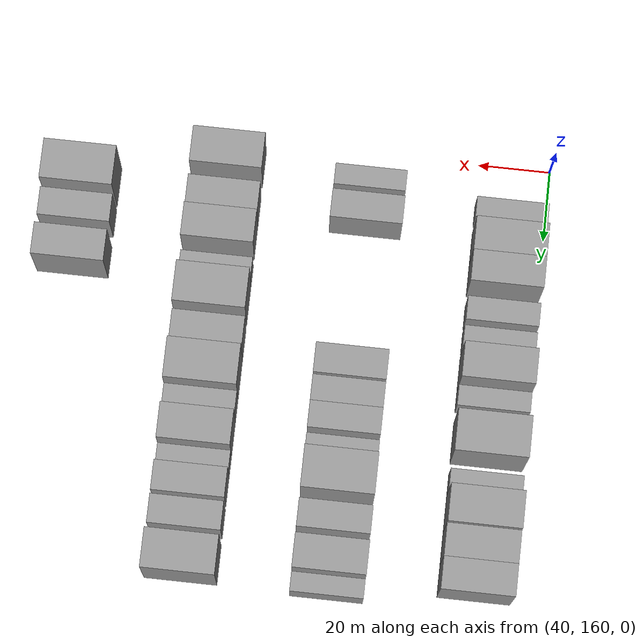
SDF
<sdf version="1.6">
 <world name="default">
  <model name="building_82">
   <static>1</static>
   <pose>50.0000 175.1410 0 0.000000 0.000000 0.000000</pose>
   <link name="link">
    <pose>0 0 6.00 0 0 0</pose>
    <collision name="collision"><geometry><box><size>20.0000 5.9239 12.0000</size></box></geometry></collision>
    <visual name="visual">
     <cast_shadows>0</cast_shadows>
     <geometry><box><size>20.0000 5.9239 12.0000</size></box></geometry>
     <material>
      <script>
       <uri>model://grey_wall/materials/scripts</uri>
       <uri>model://grey_wall/materials/textures</uri>
       <name>vrc/grey_wall</name>
      </script>
     </material>
    </visual>
   </link>
  </model>
  <model name="building_83">
   <static>1</static>
   <pose>50.0000 184.8120 0 0.000000 0.000000 0.000000</pose>
   <link name="link">
    <pose>0 0 10.50 0 0 0</pose>
    <collision name="collision"><geometry><box><size>20.0000 9.4180 21.0000</size></box></geometry></collision>
    <visual name="visual">
     <cast_shadows>0</cast_shadows>
     <geometry><box><size>20.0000 9.4180 21.0000</size></box></geometry>
     <material>
      <script>
       <uri>model://grey_wall/materials/scripts</uri>
       <uri>model://grey_wall/materials/textures</uri>
       <name>vrc/grey_wall</name>
      </script>
     </material>
    </visual>
   </link>
  </model>
  <model name="building_84">
   <static>1</static>
   <pose>50.0000 193.8947 0 0.000000 0.000000 0.000000</pose>
   <link name="link">
    <pose>0 0 10.50 0 0 0</pose>
    <collision name="collision"><geometry><box><size>20.0000 8.7476 21.0000</size></box></geometry></collision>
    <visual name="visual">
     <cast_shadows>0</cast_shadows>
     <geometry><box><size>20.0000 8.7476 21.0000</size></box></geometry>
     <material>
      <script>
       <uri>model://grey_wall/materials/scripts</uri>
       <uri>model://grey_wall/materials/textures</uri>
       <name>vrc/grey_wall</name>
      </script>
     </material>
    </visual>
   </link>
  </model>
  <model name="building_85">
   <static>1</static>
   <pose>50.0000 204.5671 0 0.000000 0.000000 0.000000</pose>
   <link name="link">
    <pose>0 0 7.50 0 0 0</pose>
    <collision name="collision"><geometry><box><size>20.0000 6.5972 15.0000</size></box></geometry></collision>
    <visual name="visual">
     <cast_shadows>0</cast_shadows>
     <geometry><box><size>20.0000 6.5972 15.0000</size></box></geometry>
     <material>
      <script>
       <uri>model://grey_wall/materials/scripts</uri>
       <uri>model://grey_wall/materials/textures</uri>
       <name>vrc/grey_wall</name>
      </script>
     </material>
    </visual>
   </link>
  </model>
  <model name="building_86">
   <static>1</static>
   <pose>50.0000 211.8494 0 0.000000 0.000000 0.000000</pose>
   <link name="link">
    <pose>0 0 6.00 0 0 0</pose>
    <collision name="collision"><geometry><box><size>20.0000 5.9674 12.0000</size></box></geometry></collision>
    <visual name="visual">
     <cast_shadows>0</cast_shadows>
     <geometry><box><size>20.0000 5.9674 12.0000</size></box></geometry>
     <material>
      <script>
       <uri>model://grey_wall/materials/scripts</uri>
       <uri>model://grey_wall/materials/textures</uri>
       <name>vrc/grey_wall</name>
      </script>
     </material>
    </visual>
   </link>
  </model>
  <model name="building_87">
   <static>1</static>
   <pose>50.0000 220.7346 0 0.000000 0.000000 0.000000</pose>
   <link name="link">
    <pose>0 0 12.00 0 0 0</pose>
    <collision name="collision"><geometry><box><size>20.0000 9.8029 24.0000</size></box></geometry></collision>
    <visual name="visual">
     <cast_shadows>0</cast_shadows>
     <geometry><box><size>20.0000 9.8029 24.0000</size></box></geometry>
     <material>
      <script>
       <uri>model://grey_wall/materials/scripts</uri>
       <uri>model://grey_wall/materials/textures</uri>
       <name>vrc/grey_wall</name>
      </script>
     </material>
    </visual>
   </link>
  </model>
  <model name="building_88">
   <static>1</static>
   <pose>50.0000 228.4900 0 0.000000 0.000000 0.000000</pose>
   <link name="link">
    <pose>0 0 6.00 0 0 0</pose>
    <collision name="collision"><geometry><box><size>20.0000 5.7079 12.0000</size></box></geometry></collision>
    <visual name="visual">
     <cast_shadows>0</cast_shadows>
     <geometry><box><size>20.0000 5.7079 12.0000</size></box></geometry>
     <material>
      <script>
       <uri>model://grey_wall/materials/scripts</uri>
       <uri>model://grey_wall/materials/textures</uri>
       <name>vrc/grey_wall</name>
      </script>
     </material>
    </visual>
   </link>
  </model>
  <model name="building_89">
   <static>1</static>
   <pose>50.0000 240.0801 0 0.000000 0.000000 0.000000</pose>
   <link name="link">
    <pose>0 0 12.00 0 0 0</pose>
    <collision name="collision"><geometry><box><size>20.0000 11.4722 24.0000</size></box></geometry></collision>
    <visual name="visual">
     <cast_shadows>0</cast_shadows>
     <geometry><box><size>20.0000 11.4722 24.0000</size></box></geometry>
     <material>
      <script>
       <uri>model://grey_wall/materials/scripts</uri>
       <uri>model://grey_wall/materials/textures</uri>
       <name>vrc/grey_wall</name>
      </script>
     </material>
    </visual>
   </link>
  </model>
  <model name="building_90">
   <static>1</static>
   <pose>50.0000 251.7598 0 0.000000 0.000000 0.000000</pose>
   <link name="link">
    <pose>0 0 6.00 0 0 0</pose>
    <collision name="collision"><geometry><box><size>20.0000 5.8871 12.0000</size></box></geometry></collision>
    <visual name="visual">
     <cast_shadows>0</cast_shadows>
     <geometry><box><size>20.0000 5.8871 12.0000</size></box></geometry>
     <material>
      <script>
       <uri>model://grey_wall/materials/scripts</uri>
       <uri>model://grey_wall/materials/textures</uri>
       <name>vrc/grey_wall</name>
      </script>
     </material>
    </visual>
   </link>
  </model>
  <model name="building_91">
   <static>1</static>
   <pose>50.0000 259.8462 0 0.000000 0.000000 0.000000</pose>
   <link name="link">
    <pose>0 0 12.00 0 0 0</pose>
    <collision name="collision"><geometry><box><size>20.0000 10.2856 24.0000</size></box></geometry></collision>
    <visual name="visual">
     <cast_shadows>0</cast_shadows>
     <geometry><box><size>20.0000 10.2856 24.0000</size></box></geometry>
     <material>
      <script>
       <uri>model://grey_wall/materials/scripts</uri>
       <uri>model://grey_wall/materials/textures</uri>
       <name>vrc/grey_wall</name>
      </script>
     </material>
    </visual>
   </link>
  </model>
  <model name="building_92">
   <static>1</static>
   <pose>50.0000 269.4874 0 0.000000 0.000000 0.000000</pose>
   <link name="link">
    <pose>0 0 10.50 0 0 0</pose>
    <collision name="collision"><geometry><box><size>20.0000 8.9970 21.0000</size></box></geometry></collision>
    <visual name="visual">
     <cast_shadows>0</cast_shadows>
     <geometry><box><size>20.0000 8.9970 21.0000</size></box></geometry>
     <material>
      <script>
       <uri>model://grey_wall/materials/scripts</uri>
       <uri>model://grey_wall/materials/textures</uri>
       <name>vrc/grey_wall</name>
      </script>
     </material>
    </visual>
   </link>
  </model>
  <model name="building_93">
   <static>1</static>
   <pose>50.0000 278.4391 0 0.000000 0.000000 0.000000</pose>
   <link name="link">
    <pose>0 0 10.50 0 0 0</pose>
    <collision name="collision"><geometry><box><size>20.0000 8.9065 21.0000</size></box></geometry></collision>
    <visual name="visual">
     <cast_shadows>0</cast_shadows>
     <geometry><box><size>20.0000 8.9065 21.0000</size></box></geometry>
     <material>
      <script>
       <uri>model://grey_wall/materials/scripts</uri>
       <uri>model://grey_wall/materials/textures</uri>
       <name>vrc/grey_wall</name>
      </script>
     </material>
    </visual>
   </link>
  </model>
  <model name="building_216">
   <static>1</static>
   <pose>90.0000 169.8955 0 0.000000 0.000000 0.000000</pose>
   <link name="link">
    <pose>0 0 6.00 0 0 0</pose>
    <collision name="collision"><geometry><box><size>20.0000 5.9540 12.0000</size></box></geometry></collision>
    <visual name="visual">
     <cast_shadows>0</cast_shadows>
     <geometry><box><size>20.0000 5.9540 12.0000</size></box></geometry>
     <material>
      <script>
       <uri>model://grey_wall/materials/scripts</uri>
       <uri>model://grey_wall/materials/textures</uri>
       <name>vrc/grey_wall</name>
      </script>
     </material>
    </visual>
   </link>
  </model>
  <model name="building_217">
   <static>1</static>
   <pose>90.0000 179.8749 0 0.000000 0.000000 0.000000</pose>
   <link name="link">
    <pose>0 0 9.00 0 0 0</pose>
    <collision name="collision"><geometry><box><size>20.0000 8.0049 18.0000</size></box></geometry></collision>
    <visual name="visual">
     <cast_shadows>0</cast_shadows>
     <geometry><box><size>20.0000 8.0049 18.0000</size></box></geometry>
     <material>
      <script>
       <uri>model://grey_wall/materials/scripts</uri>
       <uri>model://grey_wall/materials/textures</uri>
       <name>vrc/grey_wall</name>
      </script>
     </material>
    </visual>
   </link>
  </model>
  <model name="building_218">
   <static>1</static>
   <pose>90.0000 223.3924 0 0.000000 0.000000 0.000000</pose>
   <link name="link">
    <pose>0 0 9.00 0 0 0</pose>
    <collision name="collision"><geometry><box><size>20.0000 8.3434 18.0000</size></box></geometry></collision>
    <visual name="visual">
     <cast_shadows>0</cast_shadows>
     <geometry><box><size>20.0000 8.3434 18.0000</size></box></geometry>
     <material>
      <script>
       <uri>model://grey_wall/materials/scripts</uri>
       <uri>model://grey_wall/materials/textures</uri>
       <name>vrc/grey_wall</name>
      </script>
     </material>
    </visual>
   </link>
  </model>
  <model name="building_219">
   <static>1</static>
   <pose>90.0000 231.1657 0 0.000000 0.000000 0.000000</pose>
   <link name="link">
    <pose>0 0 7.50 0 0 0</pose>
    <collision name="collision"><geometry><box><size>20.0000 7.2032 15.0000</size></box></geometry></collision>
    <visual name="visual">
     <cast_shadows>0</cast_shadows>
     <geometry><box><size>20.0000 7.2032 15.0000</size></box></geometry>
     <material>
      <script>
       <uri>model://grey_wall/materials/scripts</uri>
       <uri>model://grey_wall/materials/textures</uri>
       <name>vrc/grey_wall</name>
      </script>
     </material>
    </visual>
   </link>
  </model>
  <model name="building_220">
   <static>1</static>
   <pose>90.0000 238.5093 0 0.000000 0.000000 0.000000</pose>
   <link name="link">
    <pose>0 0 7.50 0 0 0</pose>
    <collision name="collision"><geometry><box><size>20.0000 7.4840 15.0000</size></box></geometry></collision>
    <visual name="visual">
     <cast_shadows>0</cast_shadows>
     <geometry><box><size>20.0000 7.4840 15.0000</size></box></geometry>
     <material>
      <script>
       <uri>model://grey_wall/materials/scripts</uri>
       <uri>model://grey_wall/materials/textures</uri>
       <name>vrc/grey_wall</name>
      </script>
     </material>
    </visual>
   </link>
  </model>
  <model name="building_221">
   <static>1</static>
   <pose>90.0000 245.8730 0 0.000000 0.000000 0.000000</pose>
   <link name="link">
    <pose>0 0 6.00 0 0 0</pose>
    <collision name="collision"><geometry><box><size>20.0000 5.2434 12.0000</size></box></geometry></collision>
    <visual name="visual">
     <cast_shadows>0</cast_shadows>
     <geometry><box><size>20.0000 5.2434 12.0000</size></box></geometry>
     <material>
      <script>
       <uri>model://grey_wall/materials/scripts</uri>
       <uri>model://grey_wall/materials/textures</uri>
       <name>vrc/grey_wall</name>
      </script>
     </material>
    </visual>
   </link>
  </model>
  <model name="building_222">
   <static>1</static>
   <pose>90.0000 254.3017 0 0.000000 0.000000 0.000000</pose>
   <link name="link">
    <pose>0 0 12.00 0 0 0</pose>
    <collision name="collision"><geometry><box><size>20.0000 11.6140 24.0000</size></box></geometry></collision>
    <visual name="visual">
     <cast_shadows>0</cast_shadows>
     <geometry><box><size>20.0000 11.6140 24.0000</size></box></geometry>
     <material>
      <script>
       <uri>model://grey_wall/materials/scripts</uri>
       <uri>model://grey_wall/materials/textures</uri>
       <name>vrc/grey_wall</name>
      </script>
     </material>
    </visual>
   </link>
  </model>
  <model name="building_223">
   <static>1</static>
   <pose>90.0000 266.0186 0 0.000000 0.000000 0.000000</pose>
   <link name="link">
    <pose>0 0 9.00 0 0 0</pose>
    <collision name="collision"><geometry><box><size>20.0000 7.8198 18.0000</size></box></geometry></collision>
    <visual name="visual">
     <cast_shadows>0</cast_shadows>
     <geometry><box><size>20.0000 7.8198 18.0000</size></box></geometry>
     <material>
      <script>
       <uri>model://grey_wall/materials/scripts</uri>
       <uri>model://grey_wall/materials/textures</uri>
       <name>vrc/grey_wall</name>
      </script>
     </material>
    </visual>
   </link>
  </model>
  <model name="building_224">
   <static>1</static>
   <pose>90.0000 276.6530 0 0.000000 0.000000 0.000000</pose>
   <link name="link">
    <pose>0 0 10.50 0 0 0</pose>
    <collision name="collision"><geometry><box><size>20.0000 9.4490 21.0000</size></box></geometry></collision>
    <visual name="visual">
     <cast_shadows>0</cast_shadows>
     <geometry><box><size>20.0000 9.4490 21.0000</size></box></geometry>
     <material>
      <script>
       <uri>model://grey_wall/materials/scripts</uri>
       <uri>model://grey_wall/materials/textures</uri>
       <name>vrc/grey_wall</name>
      </script>
     </material>
    </visual>
   </link>
  </model>
  <model name="building_225">
   <static>1</static>
   <pose>90.0000 284.0749 0 0.000000 0.000000 0.000000</pose>
   <link name="link">
    <pose>0 0 6.00 0 0 0</pose>
    <collision name="collision"><geometry><box><size>20.0000 5.3949 12.0000</size></box></geometry></collision>
    <visual name="visual">
     <cast_shadows>0</cast_shadows>
     <geometry><box><size>20.0000 5.3949 12.0000</size></box></geometry>
     <material>
      <script>
       <uri>model://grey_wall/materials/scripts</uri>
       <uri>model://grey_wall/materials/textures</uri>
       <name>vrc/grey_wall</name>
      </script>
     </material>
    </visual>
   </link>
  </model>
  <model name="building_345">
   <static>1</static>
   <pose>130.0000 168.0400 0 0.000000 0.000000 0.000000</pose>
   <link name="link">
    <pose>0 0 10.50 0 0 0</pose>
    <collision name="collision"><geometry><box><size>20.0000 10.0718 21.0000</size></box></geometry></collision>
    <visual name="visual">
     <cast_shadows>0</cast_shadows>
     <geometry><box><size>20.0000 10.0718 21.0000</size></box></geometry>
     <material>
      <script>
       <uri>model://grey_wall/materials/scripts</uri>
       <uri>model://grey_wall/materials/textures</uri>
       <name>vrc/grey_wall</name>
      </script>
     </material>
    </visual>
   </link>
  </model>
  <model name="building_346">
   <static>1</static>
   <pose>130.0000 180.4424 0 0.000000 0.000000 0.000000</pose>
   <link name="link">
    <pose>0 0 9.00 0 0 0</pose>
    <collision name="collision"><geometry><box><size>20.0000 8.7331 18.0000</size></box></geometry></collision>
    <visual name="visual">
     <cast_shadows>0</cast_shadows>
     <geometry><box><size>20.0000 8.7331 18.0000</size></box></geometry>
     <material>
      <script>
       <uri>model://grey_wall/materials/scripts</uri>
       <uri>model://grey_wall/materials/textures</uri>
       <name>vrc/grey_wall</name>
      </script>
     </material>
    </visual>
   </link>
  </model>
  <model name="building_347">
   <static>1</static>
   <pose>130.0000 189.4909 0 0.000000 0.000000 0.000000</pose>
   <link name="link">
    <pose>0 0 10.50 0 0 0</pose>
    <collision name="collision"><geometry><box><size>20.0000 9.3639 21.0000</size></box></geometry></collision>
    <visual name="visual">
     <cast_shadows>0</cast_shadows>
     <geometry><box><size>20.0000 9.3639 21.0000</size></box></geometry>
     <material>
      <script>
       <uri>model://grey_wall/materials/scripts</uri>
       <uri>model://grey_wall/materials/textures</uri>
       <name>vrc/grey_wall</name>
      </script>
     </material>
    </visual>
   </link>
  </model>
  <model name="building_348">
   <static>1</static>
   <pose>130.0000 199.0781 0 0.000000 0.000000 0.000000</pose>
   <link name="link">
    <pose>0 0 6.00 0 0 0</pose>
    <collision name="collision"><geometry><box><size>20.0000 5.8104 12.0000</size></box></geometry></collision>
    <visual name="visual">
     <cast_shadows>0</cast_shadows>
     <geometry><box><size>20.0000 5.8104 12.0000</size></box></geometry>
     <material>
      <script>
       <uri>model://grey_wall/materials/scripts</uri>
       <uri>model://grey_wall/materials/textures</uri>
       <name>vrc/grey_wall</name>
      </script>
     </material>
    </visual>
   </link>
  </model>
  <model name="building_349">
   <static>1</static>
   <pose>130.0000 207.6101 0 0.000000 0.000000 0.000000</pose>
   <link name="link">
    <pose>0 0 12.00 0 0 0</pose>
    <collision name="collision"><geometry><box><size>20.0000 11.2536 24.0000</size></box></geometry></collision>
    <visual name="visual">
     <cast_shadows>0</cast_shadows>
     <geometry><box><size>20.0000 11.2536 24.0000</size></box></geometry>
     <material>
      <script>
       <uri>model://grey_wall/materials/scripts</uri>
       <uri>model://grey_wall/materials/textures</uri>
       <name>vrc/grey_wall</name>
      </script>
     </material>
    </visual>
   </link>
  </model>
  <model name="building_350">
   <static>1</static>
   <pose>130.0000 218.7089 0 0.000000 0.000000 0.000000</pose>
   <link name="link">
    <pose>0 0 9.00 0 0 0</pose>
    <collision name="collision"><geometry><box><size>20.0000 8.9440 18.0000</size></box></geometry></collision>
    <visual name="visual">
     <cast_shadows>0</cast_shadows>
     <geometry><box><size>20.0000 8.9440 18.0000</size></box></geometry>
     <material>
      <script>
       <uri>model://grey_wall/materials/scripts</uri>
       <uri>model://grey_wall/materials/textures</uri>
       <name>vrc/grey_wall</name>
      </script>
     </material>
    </visual>
   </link>
  </model>
  <model name="building_351">
   <static>1</static>
   <pose>130.0000 228.7955 0 0.000000 0.000000 0.000000</pose>
   <link name="link">
    <pose>0 0 12.00 0 0 0</pose>
    <collision name="collision"><geometry><box><size>20.0000 11.2291 24.0000</size></box></geometry></collision>
    <visual name="visual">
     <cast_shadows>0</cast_shadows>
     <geometry><box><size>20.0000 11.2291 24.0000</size></box></geometry>
     <material>
      <script>
       <uri>model://grey_wall/materials/scripts</uri>
       <uri>model://grey_wall/materials/textures</uri>
       <name>vrc/grey_wall</name>
      </script>
     </material>
    </visual>
   </link>
  </model>
  <model name="building_352">
   <static>1</static>
   <pose>130.0000 237.5260 0 0.000000 0.000000 0.000000</pose>
   <link name="link">
    <pose>0 0 7.50 0 0 0</pose>
    <collision name="collision"><geometry><box><size>20.0000 6.2319 15.0000</size></box></geometry></collision>
    <visual name="visual">
     <cast_shadows>0</cast_shadows>
     <geometry><box><size>20.0000 6.2319 15.0000</size></box></geometry>
     <material>
      <script>
       <uri>model://grey_wall/materials/scripts</uri>
       <uri>model://grey_wall/materials/textures</uri>
       <name>vrc/grey_wall</name>
      </script>
     </material>
    </visual>
   </link>
  </model>
  <model name="building_353">
   <static>1</static>
   <pose>130.0000 245.5406 0 0.000000 0.000000 0.000000</pose>
   <link name="link">
    <pose>0 0 10.50 0 0 0</pose>
    <collision name="collision"><geometry><box><size>20.0000 9.7974 21.0000</size></box></geometry></collision>
    <visual name="visual">
     <cast_shadows>0</cast_shadows>
     <geometry><box><size>20.0000 9.7974 21.0000</size></box></geometry>
     <material>
      <script>
       <uri>model://grey_wall/materials/scripts</uri>
       <uri>model://grey_wall/materials/textures</uri>
       <name>vrc/grey_wall</name>
      </script>
     </material>
    </visual>
   </link>
  </model>
  <model name="building_354">
   <static>1</static>
   <pose>130.0000 253.2370 0 0.000000 0.000000 0.000000</pose>
   <link name="link">
    <pose>0 0 6.00 0 0 0</pose>
    <collision name="collision"><geometry><box><size>20.0000 5.5955 12.0000</size></box></geometry></collision>
    <visual name="visual">
     <cast_shadows>0</cast_shadows>
     <geometry><box><size>20.0000 5.5955 12.0000</size></box></geometry>
     <material>
      <script>
       <uri>model://grey_wall/materials/scripts</uri>
       <uri>model://grey_wall/materials/textures</uri>
       <name>vrc/grey_wall</name>
      </script>
     </material>
    </visual>
   </link>
  </model>
  <model name="building_355">
   <static>1</static>
   <pose>130.0000 260.1692 0 0.000000 0.000000 0.000000</pose>
   <link name="link">
    <pose>0 0 9.00 0 0 0</pose>
    <collision name="collision"><geometry><box><size>20.0000 8.2689 18.0000</size></box></geometry></collision>
    <visual name="visual">
     <cast_shadows>0</cast_shadows>
     <geometry><box><size>20.0000 8.2689 18.0000</size></box></geometry>
     <material>
      <script>
       <uri>model://grey_wall/materials/scripts</uri>
       <uri>model://grey_wall/materials/textures</uri>
       <name>vrc/grey_wall</name>
      </script>
     </material>
    </visual>
   </link>
  </model>
  <model name="building_356">
   <static>1</static>
   <pose>130.0000 269.2740 0 0.000000 0.000000 0.000000</pose>
   <link name="link">
    <pose>0 0 9.00 0 0 0</pose>
    <collision name="collision"><geometry><box><size>20.0000 7.9407 18.0000</size></box></geometry></collision>
    <visual name="visual">
     <cast_shadows>0</cast_shadows>
     <geometry><box><size>20.0000 7.9407 18.0000</size></box></geometry>
     <material>
      <script>
       <uri>model://grey_wall/materials/scripts</uri>
       <uri>model://grey_wall/materials/textures</uri>
       <name>vrc/grey_wall</name>
      </script>
     </material>
    </visual>
   </link>
  </model>
  <model name="building_357">
   <static>1</static>
   <pose>130.0000 280.6599 0 0.000000 0.000000 0.000000</pose>
   <link name="link">
    <pose>0 0 12.00 0 0 0</pose>
    <collision name="collision"><geometry><box><size>20.0000 10.8312 24.0000</size></box></geometry></collision>
    <visual name="visual">
     <cast_shadows>0</cast_shadows>
     <geometry><box><size>20.0000 10.8312 24.0000</size></box></geometry>
     <material>
      <script>
       <uri>model://grey_wall/materials/scripts</uri>
       <uri>model://grey_wall/materials/textures</uri>
       <name>vrc/grey_wall</name>
      </script>
     </material>
    </visual>
   </link>
  </model>
  <model name="building_488">
   <static>1</static>
   <pose>170.0000 177.4528 0 0.000000 0.000000 0.000000</pose>
   <link name="link">
    <pose>0 0 12.00 0 0 0</pose>
    <collision name="collision"><geometry><box><size>20.0000 11.1000 24.0000</size></box></geometry></collision>
    <visual name="visual">
     <cast_shadows>0</cast_shadows>
     <geometry><box><size>20.0000 11.1000 24.0000</size></box></geometry>
     <material>
      <script>
       <uri>model://grey_wall/materials/scripts</uri>
       <uri>model://grey_wall/materials/textures</uri>
       <name>vrc/grey_wall</name>
      </script>
     </material>
    </visual>
   </link>
  </model>
  <model name="building_489">
   <static>1</static>
   <pose>170.0000 187.9369 0 0.000000 0.000000 0.000000</pose>
   <link name="link">
    <pose>0 0 9.00 0 0 0</pose>
    <collision name="collision"><geometry><box><size>20.0000 7.8681 18.0000</size></box></geometry></collision>
    <visual name="visual">
     <cast_shadows>0</cast_shadows>
     <geometry><box><size>20.0000 7.8681 18.0000</size></box></geometry>
     <material>
      <script>
       <uri>model://grey_wall/materials/scripts</uri>
       <uri>model://grey_wall/materials/textures</uri>
       <name>vrc/grey_wall</name>
      </script>
     </material>
    </visual>
   </link>
  </model>
  <model name="building_490">
   <static>1</static>
   <pose>170.0000 199.2944 0 0.000000 0.000000 0.000000</pose>
   <link name="link">
    <pose>0 0 10.50 0 0 0</pose>
    <collision name="collision"><geometry><box><size>20.0000 8.8469 21.0000</size></box></geometry></collision>
    <visual name="visual">
     <cast_shadows>0</cast_shadows>
     <geometry><box><size>20.0000 8.8469 21.0000</size></box></geometry>
     <material>
      <script>
       <uri>model://grey_wall/materials/scripts</uri>
       <uri>model://grey_wall/materials/textures</uri>
       <name>vrc/grey_wall</name>
      </script>
     </material>
    </visual>
   </link>
  </model>
 </world>
</sdf>
